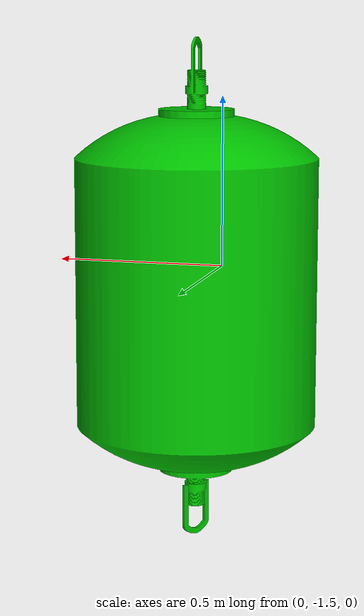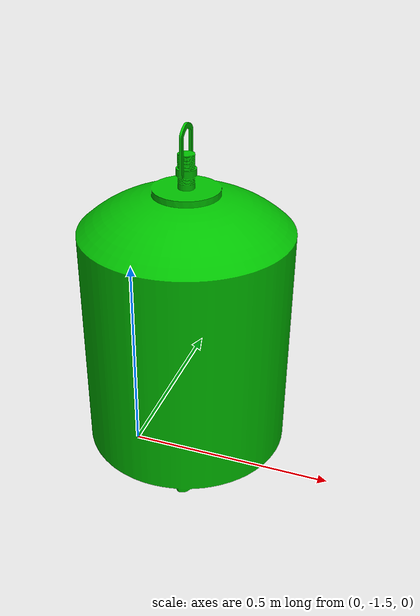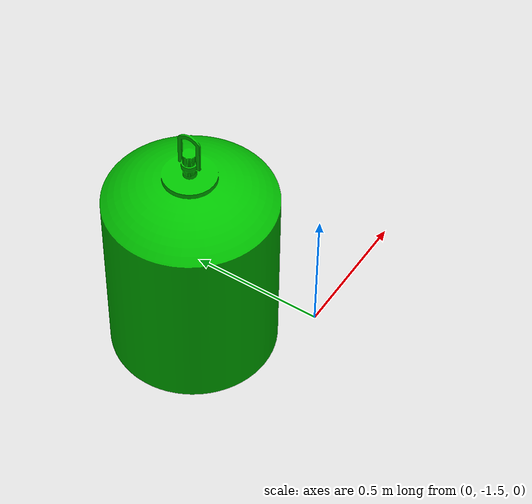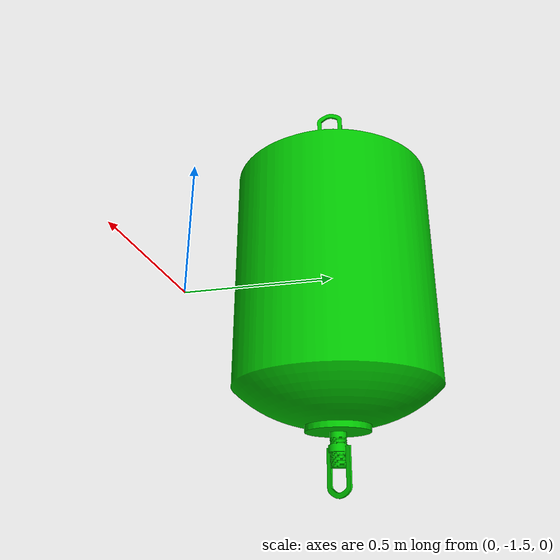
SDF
<?xml version="1.0"?>
<sdf version="1.9">
  <model name="green_buoy">
    <static>true</static>

    <link name="link">

      <visual name="visual">

        <!-- STL modeli Y ekseninde dik export edildigi icin
             Gazebo Z-up sistemine 90 derece cevriliyor. -->
        <pose>0 0 0 1.5708 0 0</pose>

        <cast_shadows>false</cast_shadows>

        <geometry>
          <mesh>
            <uri>model://green_buoy/meshes/buoy.stl</uri>
          </mesh>
        </geometry>

        <material>
          <!-- Dengeli, saf ve mat kirmizi -->
          <ambient>0.00 0.40 0.00 1</ambient>
          <diffuse>0.00 0.75 0.00 1</diffuse>
          <specular>0.00 0.00 0.00 1</specular>
          <emissive>0.00 0.02 0.00 1</emissive>

          <pbr>
            <metal>
              <metalness>0.0</metalness>
              <roughness>1.0</roughness>
            </metal>
          </pbr>
        </material>

      </visual>

      <collision name="collision">
        <geometry>
          <cylinder>
            <radius>0.35</radius>
            <length>1.2</length>
          </cylinder>
        </geometry>
      </collision>

    </link>
  </model>
</sdf>
